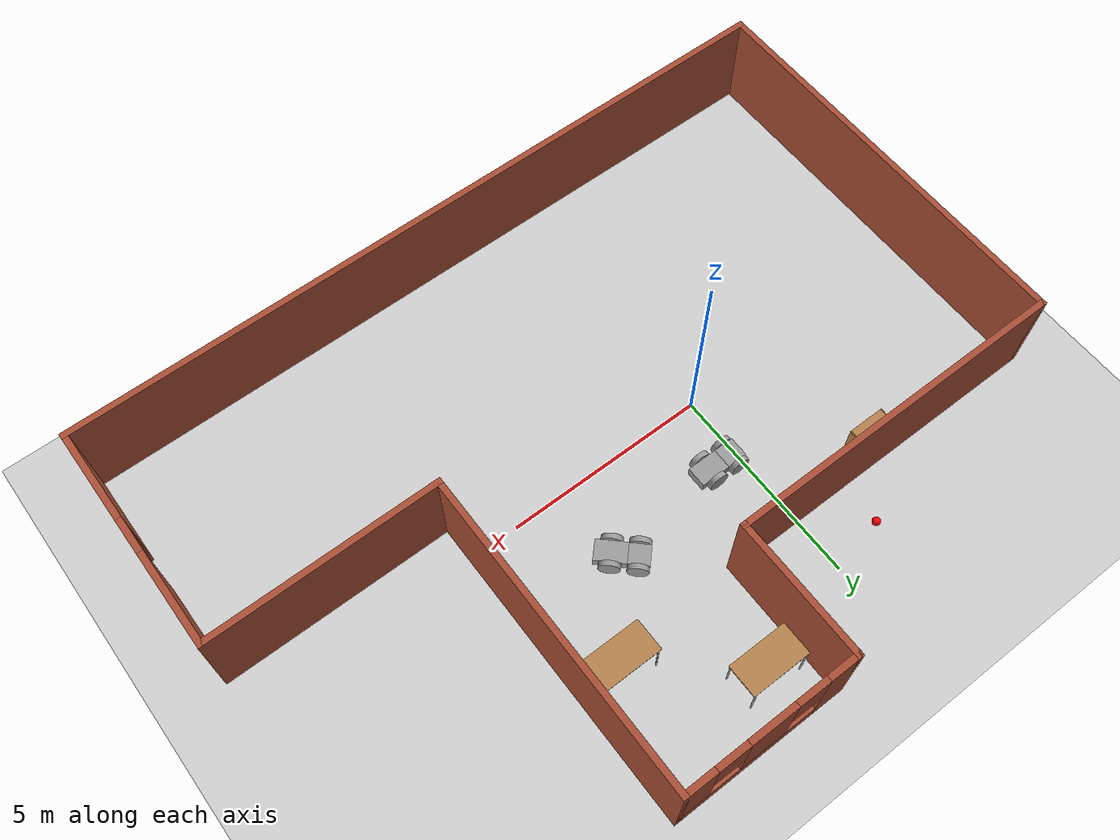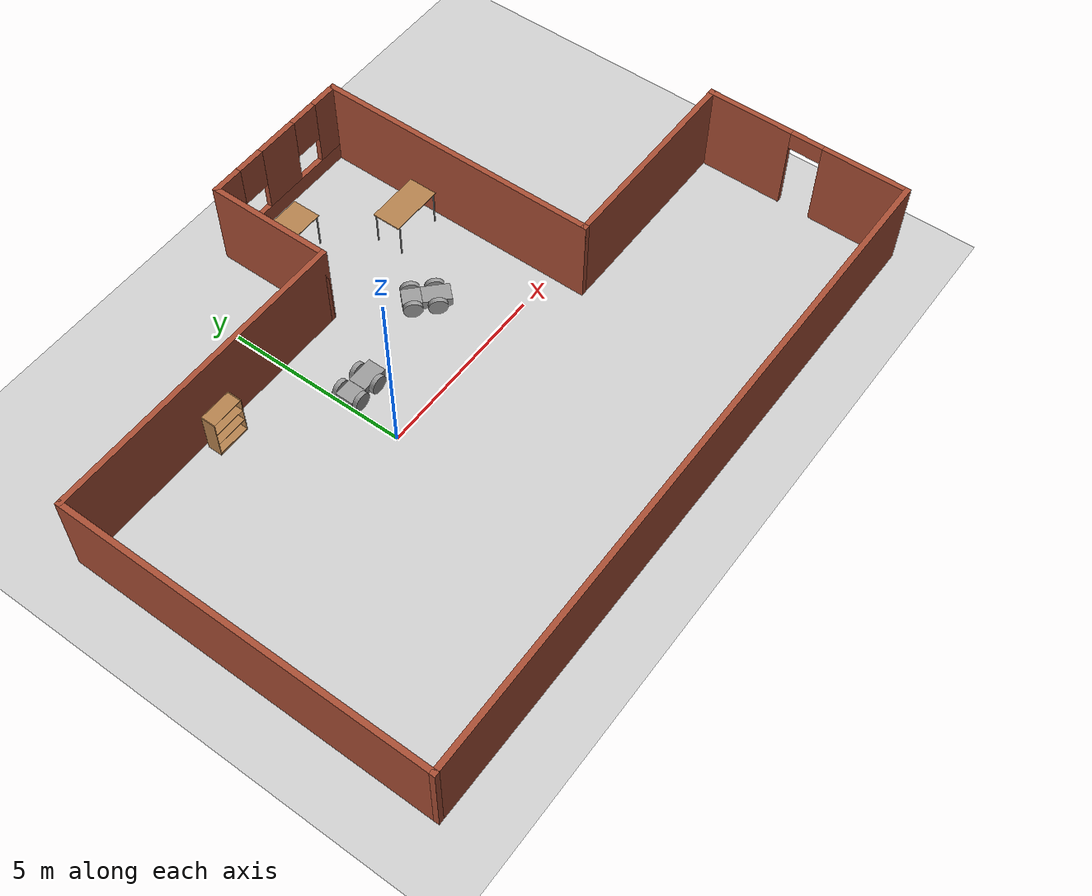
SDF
<sdf version="1.7">
 <world name="default">
  <model name="ground_plane">
   <static>1</static>
   <link name="link">
    <collision name="collision">
     <geometry><plane><normal>0 0 1</normal><size>100 100</size></plane></geometry>
     <surface><friction><ode><mu>100</mu><mu2>50</mu2></ode></friction></surface>
    </collision>
    <visual name="visual">
     <cast_shadows>0</cast_shadows>
     <geometry><plane><normal>0 0 1</normal><size>100 100</size></plane></geometry>
     <material>
      <script><uri>file://media/materials/scripts/gazebo.material</uri><name>Gazebo/Grey</name></script>
     </material>
    </visual>
   </link>
  </model>
  <model name="pj1_building">
   <pose>2.5189 0.1919 0 0 -0 0</pose>
   <link name="Wall_10">
    <pose>9.275 -3.925 0 0 0 -1.5708</pose>
    <visual name="Wall_10_Visual_0">
     <pose>-1.65724 0 1.25 0 -0 0</pose>
     <geometry><box><size>2.43551 0.15 2.5</size></box></geometry>
     <material>
      <script><uri>file://media/materials/scripts/gazebo.material</uri><name>Gazebo/Bricks</name></script>
      <ambient>1 1 1 1</ambient>
     </material>
     <meta><layer>0</layer></meta>
    </visual>
    <collision name="Wall_10_Collision_0">
     <geometry><box><size>2.43551 0.15 2.5</size></box></geometry>
     <pose>-1.65724 0 1.25 0 -0 0</pose>
    </collision>
    <visual name="Wall_10_Visual_1">
     <pose>1.66776 0 1.25 0 -0 0</pose>
     <geometry><box><size>2.41449 0.15 2.5</size></box></geometry>
     <material>
      <script><uri>file://media/materials/scripts/gazebo.material</uri><name>Gazebo/Bricks</name></script>
      <ambient>1 1 1 1</ambient>
     </material>
     <meta><layer>0</layer></meta>
    </visual>
    <collision name="Wall_10_Collision_1">
     <geometry><box><size>2.41449 0.15 2.5</size></box></geometry>
     <pose>1.66776 0 1.25 0 -0 0</pose>
    </collision>
    <visual name="Wall_10_Visual_2">
     <pose>0.010514 0 2.25 0 -0 0</pose>
     <geometry><box><size>0.9 0.15 0.5</size></box></geometry>
     <material>
      <script><uri>file://media/materials/scripts/gazebo.material</uri><name>Gazebo/Bricks</name></script>
      <ambient>1 1 1 1</ambient>
     </material>
     <meta><layer>0</layer></meta>
    </visual>
    <collision name="Wall_10_Collision_2">
     <geometry><box><size>0.9 0.15 0.5</size></box></geometry>
     <pose>0.010514 0 2.25 0 -0 0</pose>
    </collision>
   </link>
   <link name="Wall_11">
    <collision name="Wall_11_Collision">
     <geometry><box><size>18.7 0.15 2.5</size></box></geometry>
     <pose>0 0 1.25 0 -0 0</pose>
    </collision>
    <visual name="Wall_11_Visual">
     <pose>0 0 1.25 0 -0 0</pose>
     <geometry><box><size>18.7 0.15 2.5</size></box></geometry>
     <material>
      <script><uri>file://media/materials/scripts/gazebo.material</uri><name>Gazebo/Bricks</name></script>
      <ambient>1 1 1 1</ambient>
     </material>
     <meta><layer>0</layer></meta>
    </visual>
    <pose>0 -6.725 0 0 -0 3.14159</pose>
   </link>
   <link name="Wall_4">
    <collision name="Wall_4_Collision">
     <geometry><box><size>10.25 0.15 2.5</size></box></geometry>
     <pose>0 0 1.25 0 -0 0</pose>
    </collision>
    <visual name="Wall_4_Visual">
     <pose>0 0 1.25 0 -0 0</pose>
     <geometry><box><size>10.25 0.15 2.5</size></box></geometry>
     <material>
      <script><uri>file://media/materials/scripts/gazebo.material</uri><name>Gazebo/Bricks</name></script>
      <ambient>1 1 1 1</ambient>
     </material>
     <meta><layer>0</layer></meta>
    </visual>
    <pose>-9.275 -1.675 0 0 -0 1.5708</pose>
   </link>
   <link name="Wall_5">
    <collision name="Wall_5_Collision">
     <geometry><box><size>8.75 0.15 2.5</size></box></geometry>
     <pose>0 0 1.25 0 -0 0</pose>
    </collision>
    <visual name="Wall_5_Visual">
     <pose>0 0 1.25 0 -0 0</pose>
     <geometry><box><size>8.75 0.15 2.5</size></box></geometry>
     <material>
      <script><uri>file://media/materials/scripts/gazebo.material</uri><name>Gazebo/Bricks</name></script>
      <ambient>1 1 1 1</ambient>
     </material>
     <meta><layer>0</layer></meta>
    </visual>
    <pose>-4.975 3.375 0 0 -0 0</pose>
   </link>
   <link name="Wall_6">
    <collision name="Wall_6_Collision">
     <geometry><box><size>3.5 0.15 2.5</size></box></geometry>
     <pose>0 0 1.25 0 -0 0</pose>
    </collision>
    <visual name="Wall_6_Visual">
     <pose>0 0 1.25 0 -0 0</pose>
     <geometry><box><size>3.5 0.15 2.5</size></box></geometry>
     <material>
      <script><uri>file://media/materials/scripts/gazebo.material</uri><name>Gazebo/Bricks</name></script>
      <ambient>1 1 1 1</ambient>
     </material>
     <meta><layer>0</layer></meta>
    </visual>
    <pose>-0.675 5.05 0 0 -0 1.5708</pose>
   </link>
   <link name="Wall_7">
    <pose>1.5 6.725 0 0 -0 0</pose>
    <visual name="Wall_7_Visual_0">
     <pose>-1.82606 0 1.25 0 -0 0</pose>
     <geometry><box><size>0.847881 0.15 2.5</size></box></geometry>
     <material>
      <script><uri>file://media/materials/scripts/gazebo.material</uri><name>Gazebo/Bricks</name></script>
      <ambient>1 1 1 1</ambient>
     </material>
     <meta><layer>0</layer></meta>
    </visual>
    <collision name="Wall_7_Collision_0">
     <geometry><box><size>0.847881 0.15 2.5</size></box></geometry>
     <pose>-1.82606 0 1.25 0 -0 0</pose>
    </collision>
    <visual name="Wall_7_Visual_1">
     <pose>0.423941 0 0.25 0 -0 0</pose>
     <geometry><box><size>3.65212 0.15 0.5</size></box></geometry>
     <material>
      <script><uri>file://media/materials/scripts/gazebo.material</uri><name>Gazebo/Bricks</name></script>
      <ambient>1 1 1 1</ambient>
     </material>
     <meta><layer>0</layer></meta>
    </visual>
    <collision name="Wall_7_Collision_1">
     <geometry><box><size>3.65212 0.15 0.5</size></box></geometry>
     <pose>0.423941 0 0.25 0 -0 0</pose>
    </collision>
    <visual name="Wall_7_Visual_2">
     <pose>-0.002694 0 1.5 0 -0 0</pose>
     <geometry><box><size>1.19885 0.15 2</size></box></geometry>
     <material>
      <script><uri>file://media/materials/scripts/gazebo.material</uri><name>Gazebo/Bricks</name></script>
      <ambient>1 1 1 1</ambient>
     </material>
     <meta><layer>0</layer></meta>
    </visual>
    <collision name="Wall_7_Collision_2">
     <geometry><box><size>1.19885 0.15 2</size></box></geometry>
     <pose>-0.002694 0 1.5 0 -0 0</pose>
    </collision>
    <visual name="Wall_7_Visual_3">
     <pose>1.82336 0 1.5 0 -0 0</pose>
     <geometry><box><size>0.853269 0.15 2</size></box></geometry>
     <material>
      <script><uri>file://media/materials/scripts/gazebo.material</uri><name>Gazebo/Bricks</name></script>
      <ambient>1 1 1 1</ambient>
     </material>
     <meta><layer>0</layer></meta>
    </visual>
    <collision name="Wall_7_Collision_3">
     <geometry><box><size>0.853269 0.15 2</size></box></geometry>
     <pose>1.82336 0 1.5 0 -0 0</pose>
    </collision>
    <visual name="Wall_7_Visual_4">
     <pose>-1.00212 0 1.9 0 -0 0</pose>
     <geometry><box><size>0.8 0.15 1.2</size></box></geometry>
     <material>
      <script><uri>file://media/materials/scripts/gazebo.material</uri><name>Gazebo/Bricks</name></script>
      <ambient>1 1 1 1</ambient>
     </material>
     <meta><layer>0</layer></meta>
    </visual>
    <collision name="Wall_7_Collision_4">
     <geometry><box><size>0.8 0.15 1.2</size></box></geometry>
     <pose>-1.00212 0 1.9 0 -0 0</pose>
    </collision>
    <visual name="Wall_7_Visual_5">
     <pose>0.996731 0 1.9 0 -0 0</pose>
     <geometry><box><size>0.8 0.15 1.2</size></box></geometry>
     <material>
      <script><uri>file://media/materials/scripts/gazebo.material</uri><name>Gazebo/Bricks</name></script>
      <ambient>1 1 1 1</ambient>
     </material>
     <meta><layer>0</layer></meta>
    </visual>
    <collision name="Wall_7_Collision_5">
     <geometry><box><size>0.8 0.15 1.2</size></box></geometry>
     <pose>0.996731 0 1.9 0 -0 0</pose>
    </collision>
   </link>
   <link name="Wall_8">
    <collision name="Wall_8_Collision">
     <geometry><box><size>8 0.15 2.5</size></box></geometry>
     <pose>0 0 1.25 0 -0 0</pose>
    </collision>
    <visual name="Wall_8_Visual">
     <pose>0 0 1.25 0 -0 0</pose>
     <geometry><box><size>8 0.15 2.5</size></box></geometry>
     <material>
      <script><uri>file://media/materials/scripts/gazebo.material</uri><name>Gazebo/Bricks</name></script>
      <ambient>1 1 1 1</ambient>
     </material>
     <meta><layer>0</layer></meta>
    </visual>
    <pose>3.675 2.8 0 0 0 -1.5708</pose>
   </link>
   <link name="Wall_9">
    <collision name="Wall_9_Collision">
     <geometry><box><size>5.75 0.15 2.5</size></box></geometry>
     <pose>0 0 1.25 0 -0 0</pose>
    </collision>
    <visual name="Wall_9_Visual">
     <pose>0 0 1.25 0 -0 0</pose>
     <geometry><box><size>5.75 0.15 2.5</size></box></geometry>
     <material>
      <script><uri>file://media/materials/scripts/gazebo.material</uri><name>Gazebo/Bricks</name></script>
      <ambient>1 1 1 1</ambient>
     </material>
     <meta><layer>0</layer></meta>
    </visual>
    <pose>6.475 -1.125 0 0 -0 0</pose>
   </link>
   <static>1</static>
  </model>
  <model name="bookshelf">
   <static>1</static>
   <link name="link">
    <inertial><mass>1</mass></inertial>
    <collision name="back">
     <pose>0 0.005 0.6 0 -0 0</pose>
     <geometry><box><size>0.9 0.01 1.2</size></box></geometry>
    </collision>
    <visual name="visual1">
     <pose>0 0.005 0.6 0 -0 0</pose>
     <geometry><box><size>0.9 0.01 1.2</size></box></geometry>
     <material>
      <script><uri>file://media/materials/scripts/gazebo.material</uri><name>Gazebo/Wood</name></script>
     </material>
    </visual>
    <collision name="left_side">
     <pose>0.45 -0.195 0.6 0 -0 0</pose>
     <geometry><box><size>0.02 0.4 1.2</size></box></geometry>
    </collision>
    <visual name="visual2">
     <pose>0.45 -0.195 0.6 0 -0 0</pose>
     <geometry><box><size>0.02 0.4 1.2</size></box></geometry>
     <material>
      <script><uri>file://media/materials/scripts/gazebo.material</uri><name>Gazebo/Wood</name></script>
     </material>
    </visual>
    <collision name="right_side">
     <pose>-0.45 -0.195 0.6 0 -0 0</pose>
     <geometry><box><size>0.02 0.4 1.2</size></box></geometry>
    </collision>
    <visual name="visual3">
     <pose>-0.45 -0.195 0.6 0 -0 0</pose>
     <geometry><box><size>0.02 0.4 1.2</size></box></geometry>
     <material>
      <script><uri>file://media/materials/scripts/gazebo.material</uri><name>Gazebo/Wood</name></script>
     </material>
    </visual>
    <collision name="bottom">
     <pose>0 -0.195 0.03 0 -0 0</pose>
     <geometry><box><size>0.88 0.4 0.06</size></box></geometry>
    </collision>
    <visual name="visual4">
     <pose>0 -0.195 0.03 0 -0 0</pose>
     <geometry><box><size>0.88 0.4 0.06</size></box></geometry>
     <material>
      <script><uri>file://media/materials/scripts/gazebo.material</uri><name>Gazebo/Wood</name></script>
     </material>
    </visual>
    <collision name="top">
     <pose>0 -0.195 1.19 0 -0 0</pose>
     <geometry><box><size>0.88 0.4 0.02</size></box></geometry>
    </collision>
    <visual name="visual5">
     <pose>0 -0.195 1.19 0 -0 0</pose>
     <geometry><box><size>0.88 0.4 0.02</size></box></geometry>
     <material>
      <script><uri>file://media/materials/scripts/gazebo.material</uri><name>Gazebo/Wood</name></script>
     </material>
    </visual>
    <collision name="low_shelf">
     <pose>0 -0.195 0.43 0 -0 0</pose>
     <geometry><box><size>0.88 0.4 0.02</size></box></geometry>
    </collision>
    <visual name="visual6">
     <pose>0 -0.195 0.43 0 -0 0</pose>
     <geometry><box><size>0.88 0.4 0.02</size></box></geometry>
     <material>
      <script><uri>file://media/materials/scripts/gazebo.material</uri><name>Gazebo/Wood</name></script>
     </material>
    </visual>
    <collision name="high_shelf">
     <pose>0 -0.195 0.8 0 -0 0</pose>
     <geometry><box><size>0.88 0.4 0.02</size></box></geometry>
    </collision>
    <visual name="visual7">
     <pose>0 -0.195 0.8 0 -0 0</pose>
     <geometry><box><size>0.88 0.4 0.02</size></box></geometry>
     <material>
      <script><uri>file://media/materials/scripts/gazebo.material</uri><name>Gazebo/Wood</name></script>
     </material>
    </visual>
   </link>
   <pose>-2.35089 3.40239 0 0 -0 0</pose>
  </model>
  <model name="pj1_robo_1_clone_clone_0">
   <link name="link_0">
    <pose>-0.3125 0 -0.006249 0 -0 0</pose>
    <inertial>
     <mass>1</mass>
     <inertia>
      <ixx>0.166667</ixx>
      <ixy>0</ixy>
      <ixz>0</ixz>
      <iyy>0.166667</iyy>
      <iyz>0</iyz>
      <izz>0.166667</izz>
     </inertia>
    </inertial>
    <visual name="visual">
     <geometry><box><size>0.5 0.5 0.25</size></box></geometry>
     <material>
      <lighting>1</lighting>
      <script><uri>file://media/materials/scripts/gazebo.material</uri><name>Gazebo/Grey</name></script>
      <shader type="pixel"><normal_map>__default__</normal_map></shader>
      <ambient>0.3 0.3 0.3 1</ambient>
      <diffuse>0.7 0.7 0.7 1</diffuse>
      <specular>0.01 0.01 0.01 1</specular>
      <emissive>0 0 0 1</emissive>
     </material>
    </visual>
    <collision name="collision">
     <geometry><box><size>0.5 0.5 0.25</size></box></geometry>
     <surface>
      <friction>
       <ode><mu>1</mu><mu2>1</mu2><fdir1>0 0 0</fdir1><slip1>0</slip1><slip2>0</slip2></ode>
       <torsional>
        <coefficient>1</coefficient>
        <patch_radius>0</patch_radius>
        <surface_radius>0</surface_radius>
        <use_patch_radius>1</use_patch_radius>
        <ode><slip>0</slip></ode>
       </torsional>
      </friction>
      <bounce><restitution_coefficient>0</restitution_coefficient><threshold>1e+06</threshold></bounce>
      <contact>
       <collide_without_contact>0</collide_without_contact>
       <collide_without_contact_bitmask>1</collide_without_contact_bitmask>
       <collide_bitmask>1</collide_bitmask>
       <ode>
        <soft_cfm>0</soft_cfm>
        <soft_erp>0.2</soft_erp>
        <kp>1e+13</kp>
        <kd>1</kd>
        <max_vel>0.01</max_vel>
        <min_depth>0</min_depth>
       </ode>
       <bullet>
        <split_impulse>1</split_impulse>
        <split_impulse_penetration_threshold>-0.01</split_impulse_penetration_threshold>
        <soft_cfm>0</soft_cfm>
        <soft_erp>0.2</soft_erp>
        <kp>1e+13</kp>
        <kd>1</kd>
       </bullet>
      </contact>
     </surface>
    </collision>
   </link>
   <link name="link_0_clone">
    <pose>0.3125 0 0.001251 0 -0 0</pose>
    <inertial>
     <mass>1</mass>
     <inertia>
      <ixx>0.166667</ixx>
      <ixy>0</ixy>
      <ixz>0</ixz>
      <iyy>0.166667</iyy>
      <iyz>0</iyz>
      <izz>0.166667</izz>
     </inertia>
    </inertial>
    <visual name="visual">
     <geometry><box><size>0.75 0.5 0.25</size></box></geometry>
     <material>
      <lighting>1</lighting>
      <script><uri>file://media/materials/scripts/gazebo.material</uri><name>Gazebo/Grey</name></script>
      <shader type="pixel"><normal_map>__default__</normal_map></shader>
      <ambient>0.3 0.3 0.3 1</ambient>
      <diffuse>0.7 0.7 0.7 1</diffuse>
      <specular>0.01 0.01 0.01 1</specular>
      <emissive>0 0 0 1</emissive>
     </material>
    </visual>
    <collision name="collision">
     <geometry><box><size>0.75 0.5 0.25</size></box></geometry>
     <surface>
      <friction>
       <ode><mu>1</mu><mu2>1</mu2><fdir1>0 0 0</fdir1><slip1>0</slip1><slip2>0</slip2></ode>
       <torsional>
        <coefficient>1</coefficient>
        <patch_radius>0</patch_radius>
        <surface_radius>0</surface_radius>
        <use_patch_radius>1</use_patch_radius>
        <ode><slip>0</slip></ode>
       </torsional>
      </friction>
      <bounce><restitution_coefficient>0</restitution_coefficient><threshold>1e+06</threshold></bounce>
      <contact>
       <collide_without_contact>0</collide_without_contact>
       <collide_without_contact_bitmask>1</collide_without_contact_bitmask>
       <collide_bitmask>1</collide_bitmask>
       <ode>
        <soft_cfm>0</soft_cfm>
        <soft_erp>0.2</soft_erp>
        <kp>1e+13</kp>
        <kd>1</kd>
        <max_vel>0.01</max_vel>
        <min_depth>0</min_depth>
       </ode>
       <bullet>
        <split_impulse>1</split_impulse>
        <split_impulse_penetration_threshold>-0.01</split_impulse_penetration_threshold>
        <soft_cfm>0</soft_cfm>
        <soft_erp>0.2</soft_erp>
        <kp>1e+13</kp>
        <kd>1</kd>
       </bullet>
      </contact>
     </surface>
    </collision>
   </link>
   <link name="link_1">
    <pose>-0.3125 -0.312524 0.001247 1.5707 -0 0</pose>
    <inertial>
     <mass>1</mass>
     <inertia><ixx>0.145833</ixx><ixy>0</ixy><ixz>0</ixz><iyy>0.145833</iyy><iyz>0</iyz><izz>0.125</izz></inertia>
    </inertial>
    <visual name="visual">
     <geometry><cylinder><radius>0.25</radius><length>0.125</length></cylinder></geometry>
     <material>
      <lighting>1</lighting>
      <script><uri>file://media/materials/scripts/gazebo.material</uri><name>Gazebo/Grey</name></script>
      <shader type="pixel"><normal_map>__default__</normal_map></shader>
      <ambient>0.3 0.3 0.3 1</ambient>
      <diffuse>0.7 0.7 0.7 1</diffuse>
      <specular>0.01 0.01 0.01 1</specular>
      <emissive>0 0 0 1</emissive>
     </material>
    </visual>
    <collision name="collision">
     <geometry><cylinder><radius>0.25</radius><length>0.125</length></cylinder></geometry>
     <surface>
      <friction>
       <ode><mu>1</mu><mu2>1</mu2><fdir1>0 0 0</fdir1><slip1>0</slip1><slip2>0</slip2></ode>
       <torsional>
        <coefficient>1</coefficient>
        <patch_radius>0</patch_radius>
        <surface_radius>0</surface_radius>
        <use_patch_radius>1</use_patch_radius>
        <ode><slip>0</slip></ode>
       </torsional>
      </friction>
      <bounce><restitution_coefficient>0</restitution_coefficient><threshold>1e+06</threshold></bounce>
      <contact>
       <collide_without_contact>0</collide_without_contact>
       <collide_without_contact_bitmask>1</collide_without_contact_bitmask>
       <collide_bitmask>1</collide_bitmask>
       <ode>
        <soft_cfm>0</soft_cfm>
        <soft_erp>0.2</soft_erp>
        <kp>1e+13</kp>
        <kd>1</kd>
        <max_vel>0.01</max_vel>
        <min_depth>0</min_depth>
       </ode>
       <bullet>
        <split_impulse>1</split_impulse>
        <split_impulse_penetration_threshold>-0.01</split_impulse_penetration_threshold>
        <soft_cfm>0</soft_cfm>
        <soft_erp>0.2</soft_erp>
        <kp>1e+13</kp>
        <kd>1</kd>
       </bullet>
      </contact>
     </surface>
    </collision>
   </link>
   <link name="link_1_clone">
    <pose>-0.3125 0.312524 0.001251 1.5707 -0 0</pose>
    <inertial>
     <mass>1</mass>
     <inertia><ixx>0.145833</ixx><ixy>0</ixy><ixz>0</ixz><iyy>0.145833</iyy><iyz>0</iyz><izz>0.125</izz></inertia>
    </inertial>
    <visual name="visual">
     <geometry><cylinder><radius>0.25</radius><length>0.125</length></cylinder></geometry>
     <material>
      <lighting>1</lighting>
      <script><uri>file://media/materials/scripts/gazebo.material</uri><name>Gazebo/Grey</name></script>
      <shader type="pixel"><normal_map>__default__</normal_map></shader>
      <ambient>0.3 0.3 0.3 1</ambient>
      <diffuse>0.7 0.7 0.7 1</diffuse>
      <specular>0.01 0.01 0.01 1</specular>
      <emissive>0 0 0 1</emissive>
     </material>
    </visual>
    <collision name="collision">
     <geometry><cylinder><radius>0.25</radius><length>0.125</length></cylinder></geometry>
     <surface>
      <friction>
       <ode><mu>1</mu><mu2>1</mu2><fdir1>0 0 0</fdir1><slip1>0</slip1><slip2>0</slip2></ode>
       <torsional>
        <coefficient>1</coefficient>
        <patch_radius>0</patch_radius>
        <surface_radius>0</surface_radius>
        <use_patch_radius>1</use_patch_radius>
        <ode><slip>0</slip></ode>
       </torsional>
      </friction>
      <bounce><restitution_coefficient>0</restitution_coefficient><threshold>1e+06</threshold></bounce>
      <contact>
       <collide_without_contact>0</collide_without_contact>
       <collide_without_contact_bitmask>1</collide_without_contact_bitmask>
       <collide_bitmask>1</collide_bitmask>
       <ode>
        <soft_cfm>0</soft_cfm>
        <soft_erp>0.2</soft_erp>
        <kp>1e+13</kp>
        <kd>1</kd>
        <max_vel>0.01</max_vel>
        <min_depth>0</min_depth>
       </ode>
       <bullet>
        <split_impulse>1</split_impulse>
        <split_impulse_penetration_threshold>-0.01</split_impulse_penetration_threshold>
        <soft_cfm>0</soft_cfm>
        <soft_erp>0.2</soft_erp>
        <kp>1e+13</kp>
        <kd>1</kd>
       </bullet>
      </contact>
     </surface>
    </collision>
   </link>
   <link name="link_1_clone_0">
    <pose>0.3125 -0.312524 0.001251 1.5707 -0 0</pose>
    <inertial>
     <mass>1</mass>
     <inertia><ixx>0.145833</ixx><ixy>0</ixy><ixz>0</ixz><iyy>0.145833</iyy><iyz>0</iyz><izz>0.125</izz></inertia>
    </inertial>
    <visual name="visual">
     <geometry><cylinder><radius>0.25</radius><length>0.125</length></cylinder></geometry>
     <material>
      <lighting>1</lighting>
      <script><uri>file://media/materials/scripts/gazebo.material</uri><name>Gazebo/Grey</name></script>
      <shader type="pixel"><normal_map>__default__</normal_map></shader>
      <ambient>0.3 0.3 0.3 1</ambient>
      <diffuse>0.7 0.7 0.7 1</diffuse>
      <specular>0.01 0.01 0.01 1</specular>
      <emissive>0 0 0 1</emissive>
     </material>
    </visual>
    <collision name="collision">
     <geometry><cylinder><radius>0.25</radius><length>0.125</length></cylinder></geometry>
     <surface>
      <friction>
       <ode><mu>1</mu><mu2>1</mu2><fdir1>0 0 0</fdir1><slip1>0</slip1><slip2>0</slip2></ode>
       <torsional>
        <coefficient>1</coefficient>
        <patch_radius>0</patch_radius>
        <surface_radius>0</surface_radius>
        <use_patch_radius>1</use_patch_radius>
        <ode><slip>0</slip></ode>
       </torsional>
      </friction>
      <bounce><restitution_coefficient>0</restitution_coefficient><threshold>1e+06</threshold></bounce>
      <contact>
       <collide_without_contact>0</collide_without_contact>
       <collide_without_contact_bitmask>1</collide_without_contact_bitmask>
       <collide_bitmask>1</collide_bitmask>
       <ode>
        <soft_cfm>0</soft_cfm>
        <soft_erp>0.2</soft_erp>
        <kp>1e+13</kp>
        <kd>1</kd>
        <max_vel>0.01</max_vel>
        <min_depth>0</min_depth>
       </ode>
       <bullet>
        <split_impulse>1</split_impulse>
        <split_impulse_penetration_threshold>-0.01</split_impulse_penetration_threshold>
        <soft_cfm>0</soft_cfm>
        <soft_erp>0.2</soft_erp>
        <kp>1e+13</kp>
        <kd>1</kd>
       </bullet>
      </contact>
     </surface>
    </collision>
   </link>
   <link name="link_1_clone_1">
    <pose>0.3125 0.312524 0.001251 1.5707 -0 0</pose>
    <inertial>
     <mass>1</mass>
     <inertia><ixx>0.145833</ixx><ixy>0</ixy><ixz>0</ixz><iyy>0.145833</iyy><iyz>0</iyz><izz>0.125</izz></inertia>
    </inertial>
    <visual name="visual">
     <geometry><cylinder><radius>0.25</radius><length>0.125</length></cylinder></geometry>
     <material>
      <lighting>1</lighting>
      <script><uri>file://media/materials/scripts/gazebo.material</uri><name>Gazebo/Grey</name></script>
      <shader type="pixel"><normal_map>__default__</normal_map></shader>
      <ambient>0.3 0.3 0.3 1</ambient>
      <diffuse>0.7 0.7 0.7 1</diffuse>
      <specular>0.01 0.01 0.01 1</specular>
      <emissive>0 0 0 1</emissive>
     </material>
    </visual>
    <collision name="collision">
     <geometry><cylinder><radius>0.25</radius><length>0.125</length></cylinder></geometry>
     <surface>
      <friction>
       <ode><mu>1</mu><mu2>1</mu2><fdir1>0 0 0</fdir1><slip1>0</slip1><slip2>0</slip2></ode>
       <torsional>
        <coefficient>1</coefficient>
        <patch_radius>0</patch_radius>
        <surface_radius>0</surface_radius>
        <use_patch_radius>1</use_patch_radius>
        <ode><slip>0</slip></ode>
       </torsional>
      </friction>
      <bounce><restitution_coefficient>0</restitution_coefficient><threshold>1e+06</threshold></bounce>
      <contact>
       <collide_without_contact>0</collide_without_contact>
       <collide_without_contact_bitmask>1</collide_without_contact_bitmask>
       <collide_bitmask>1</collide_bitmask>
       <ode>
        <soft_cfm>0</soft_cfm>
        <soft_erp>0.2</soft_erp>
        <kp>1e+13</kp>
        <kd>1</kd>
        <max_vel>0.01</max_vel>
        <min_depth>0</min_depth>
       </ode>
       <bullet>
        <split_impulse>1</split_impulse>
        <split_impulse_penetration_threshold>-0.01</split_impulse_penetration_threshold>
        <soft_cfm>0</soft_cfm>
        <soft_erp>0.2</soft_erp>
        <kp>1e+13</kp>
        <kd>1</kd>
       </bullet>
      </contact>
     </surface>
    </collision>
   </link>
   <joint name="link_0_JOINT_1" type="fixed">
    <parent>link_0</parent>
    <child>link_0_clone</child>
    <physics>
     <ode><limit><cfm>0</cfm><erp>0.2</erp></limit><suspension><cfm>0</cfm><erp>0.2</erp></suspension></ode>
    </physics>
   </joint>
   <joint name="link_0_JOINT_2" type="revolute">
    <parent>link_0</parent>
    <child>link_1</child>
    <axis>
     <xyz>1 0 0</xyz>
     <limit>
      <lower>-1.79769e+308</lower>
      <upper>1.79769e+308</upper>
      <effort>-1</effort>
      <velocity>-1</velocity>
     </limit>
     <dynamics>
      <spring_reference>0</spring_reference>
      <spring_stiffness>0</spring_stiffness>
      <damping>0</damping>
     </dynamics>
    </axis>
    <physics>
     <ode><limit><cfm>0</cfm><erp>0.2</erp></limit><suspension><cfm>0</cfm><erp>0.2</erp></suspension></ode>
    </physics>
   </joint>
   <joint name="link_0_JOINT_3" type="revolute">
    <parent>link_0</parent>
    <child>link_1_clone</child>
    <axis>
     <xyz>1 0 0</xyz>
     <limit>
      <lower>-1.79769e+308</lower>
      <upper>1.79769e+308</upper>
      <effort>-1</effort>
      <velocity>-1</velocity>
     </limit>
     <dynamics>
      <spring_reference>0</spring_reference>
      <spring_stiffness>0</spring_stiffness>
      <damping>0</damping>
     </dynamics>
    </axis>
    <physics>
     <ode><limit><cfm>0</cfm><erp>0.2</erp></limit><suspension><cfm>0</cfm><erp>0.2</erp></suspension></ode>
    </physics>
   </joint>
   <joint name="link_0_clone_JOINT_4" type="revolute">
    <parent>link_0_clone</parent>
    <child>link_1_clone_1</child>
    <axis>
     <xyz>1 0 0</xyz>
     <limit>
      <lower>-1.79769e+308</lower>
      <upper>1.79769e+308</upper>
      <effort>-1</effort>
      <velocity>-1</velocity>
     </limit>
     <dynamics>
      <spring_reference>0</spring_reference>
      <spring_stiffness>0</spring_stiffness>
      <damping>0</damping>
     </dynamics>
    </axis>
    <physics>
     <ode><limit><cfm>0</cfm><erp>0.2</erp></limit><suspension><cfm>0</cfm><erp>0.2</erp></suspension></ode>
    </physics>
   </joint>
   <joint name="link_0_clone_JOINT_5" type="revolute">
    <parent>link_0_clone</parent>
    <child>link_1_clone_0</child>
    <axis>
     <xyz>1 0 0</xyz>
     <limit>
      <lower>-1.79769e+308</lower>
      <upper>1.79769e+308</upper>
      <effort>-1</effort>
      <velocity>-1</velocity>
     </limit>
     <dynamics>
      <spring_reference>0</spring_reference>
      <spring_stiffness>0</spring_stiffness>
      <damping>0</damping>
     </dynamics>
    </axis>
    <physics>
     <ode><limit><cfm>0</cfm><erp>0.2</erp></limit><suspension><cfm>0</cfm><erp>0.2</erp></suspension></ode>
    </physics>
   </joint>
   <static>0</static>
   <pose>0.519115 1.56394 0.24875 0 3e-06 0.000794</pose>
  </model>
  <model name="pj1_robo_1_clone_clone_1">
   <link name="link_0">
    <pose>-0.3125 0 -0.006249 0 -0 0</pose>
    <inertial>
     <mass>1</mass>
     <inertia>
      <ixx>0.166667</ixx>
      <ixy>0</ixy>
      <ixz>0</ixz>
      <iyy>0.166667</iyy>
      <iyz>0</iyz>
      <izz>0.166667</izz>
     </inertia>
    </inertial>
    <visual name="visual">
     <geometry><box><size>0.5 0.5 0.25</size></box></geometry>
     <material>
      <lighting>1</lighting>
      <script><uri>file://media/materials/scripts/gazebo.material</uri><name>Gazebo/Grey</name></script>
      <shader type="pixel"><normal_map>__default__</normal_map></shader>
      <ambient>0.3 0.3 0.3 1</ambient>
      <diffuse>0.7 0.7 0.7 1</diffuse>
      <specular>0.01 0.01 0.01 1</specular>
      <emissive>0 0 0 1</emissive>
     </material>
    </visual>
    <collision name="collision">
     <geometry><box><size>0.5 0.5 0.25</size></box></geometry>
     <surface>
      <friction>
       <ode><mu>1</mu><mu2>1</mu2><fdir1>0 0 0</fdir1><slip1>0</slip1><slip2>0</slip2></ode>
       <torsional>
        <coefficient>1</coefficient>
        <patch_radius>0</patch_radius>
        <surface_radius>0</surface_radius>
        <use_patch_radius>1</use_patch_radius>
        <ode><slip>0</slip></ode>
       </torsional>
      </friction>
      <bounce><restitution_coefficient>0</restitution_coefficient><threshold>1e+06</threshold></bounce>
      <contact>
       <collide_without_contact>0</collide_without_contact>
       <collide_without_contact_bitmask>1</collide_without_contact_bitmask>
       <collide_bitmask>1</collide_bitmask>
       <ode>
        <soft_cfm>0</soft_cfm>
        <soft_erp>0.2</soft_erp>
        <kp>1e+13</kp>
        <kd>1</kd>
        <max_vel>0.01</max_vel>
        <min_depth>0</min_depth>
       </ode>
       <bullet>
        <split_impulse>1</split_impulse>
        <split_impulse_penetration_threshold>-0.01</split_impulse_penetration_threshold>
        <soft_cfm>0</soft_cfm>
        <soft_erp>0.2</soft_erp>
        <kp>1e+13</kp>
        <kd>1</kd>
       </bullet>
      </contact>
     </surface>
    </collision>
   </link>
   <link name="link_0_clone">
    <pose>0.3125 0 0.001251 0 -0 0</pose>
    <inertial>
     <mass>1</mass>
     <inertia>
      <ixx>0.166667</ixx>
      <ixy>0</ixy>
      <ixz>0</ixz>
      <iyy>0.166667</iyy>
      <iyz>0</iyz>
      <izz>0.166667</izz>
     </inertia>
    </inertial>
    <visual name="visual">
     <geometry><box><size>0.75 0.5 0.25</size></box></geometry>
     <material>
      <lighting>1</lighting>
      <script><uri>file://media/materials/scripts/gazebo.material</uri><name>Gazebo/Grey</name></script>
      <shader type="pixel"><normal_map>__default__</normal_map></shader>
      <ambient>0.3 0.3 0.3 1</ambient>
      <diffuse>0.7 0.7 0.7 1</diffuse>
      <specular>0.01 0.01 0.01 1</specular>
      <emissive>0 0 0 1</emissive>
     </material>
    </visual>
    <collision name="collision">
     <geometry><box><size>0.75 0.5 0.25</size></box></geometry>
     <surface>
      <friction>
       <ode><mu>1</mu><mu2>1</mu2><fdir1>0 0 0</fdir1><slip1>0</slip1><slip2>0</slip2></ode>
       <torsional>
        <coefficient>1</coefficient>
        <patch_radius>0</patch_radius>
        <surface_radius>0</surface_radius>
        <use_patch_radius>1</use_patch_radius>
        <ode><slip>0</slip></ode>
       </torsional>
      </friction>
      <bounce><restitution_coefficient>0</restitution_coefficient><threshold>1e+06</threshold></bounce>
      <contact>
       <collide_without_contact>0</collide_without_contact>
       <collide_without_contact_bitmask>1</collide_without_contact_bitmask>
       <collide_bitmask>1</collide_bitmask>
       <ode>
        <soft_cfm>0</soft_cfm>
        <soft_erp>0.2</soft_erp>
        <kp>1e+13</kp>
        <kd>1</kd>
        <max_vel>0.01</max_vel>
        <min_depth>0</min_depth>
       </ode>
       <bullet>
        <split_impulse>1</split_impulse>
        <split_impulse_penetration_threshold>-0.01</split_impulse_penetration_threshold>
        <soft_cfm>0</soft_cfm>
        <soft_erp>0.2</soft_erp>
        <kp>1e+13</kp>
        <kd>1</kd>
       </bullet>
      </contact>
     </surface>
    </collision>
   </link>
   <link name="link_1">
    <pose>-0.3125 -0.312524 0.001247 1.5707 -0 0</pose>
    <inertial>
     <mass>1</mass>
     <inertia><ixx>0.145833</ixx><ixy>0</ixy><ixz>0</ixz><iyy>0.145833</iyy><iyz>0</iyz><izz>0.125</izz></inertia>
    </inertial>
    <visual name="visual">
     <geometry><cylinder><radius>0.25</radius><length>0.125</length></cylinder></geometry>
     <material>
      <lighting>1</lighting>
      <script><uri>file://media/materials/scripts/gazebo.material</uri><name>Gazebo/Grey</name></script>
      <shader type="pixel"><normal_map>__default__</normal_map></shader>
      <ambient>0.3 0.3 0.3 1</ambient>
      <diffuse>0.7 0.7 0.7 1</diffuse>
      <specular>0.01 0.01 0.01 1</specular>
      <emissive>0 0 0 1</emissive>
     </material>
    </visual>
    <collision name="collision">
     <geometry><cylinder><radius>0.25</radius><length>0.125</length></cylinder></geometry>
     <surface>
      <friction>
       <ode><mu>1</mu><mu2>1</mu2><fdir1>0 0 0</fdir1><slip1>0</slip1><slip2>0</slip2></ode>
       <torsional>
        <coefficient>1</coefficient>
        <patch_radius>0</patch_radius>
        <surface_radius>0</surface_radius>
        <use_patch_radius>1</use_patch_radius>
        <ode><slip>0</slip></ode>
       </torsional>
      </friction>
      <bounce><restitution_coefficient>0</restitution_coefficient><threshold>1e+06</threshold></bounce>
      <contact>
       <collide_without_contact>0</collide_without_contact>
       <collide_without_contact_bitmask>1</collide_without_contact_bitmask>
       <collide_bitmask>1</collide_bitmask>
       <ode>
        <soft_cfm>0</soft_cfm>
        <soft_erp>0.2</soft_erp>
        <kp>1e+13</kp>
        <kd>1</kd>
        <max_vel>0.01</max_vel>
        <min_depth>0</min_depth>
       </ode>
       <bullet>
        <split_impulse>1</split_impulse>
        <split_impulse_penetration_threshold>-0.01</split_impulse_penetration_threshold>
        <soft_cfm>0</soft_cfm>
        <soft_erp>0.2</soft_erp>
        <kp>1e+13</kp>
        <kd>1</kd>
       </bullet>
      </contact>
     </surface>
    </collision>
   </link>
   <link name="link_1_clone">
    <pose>-0.3125 0.312524 0.001251 1.5707 -0 0</pose>
    <inertial>
     <mass>1</mass>
     <inertia><ixx>0.145833</ixx><ixy>0</ixy><ixz>0</ixz><iyy>0.145833</iyy><iyz>0</iyz><izz>0.125</izz></inertia>
    </inertial>
    <visual name="visual">
     <geometry><cylinder><radius>0.25</radius><length>0.125</length></cylinder></geometry>
     <material>
      <lighting>1</lighting>
      <script><uri>file://media/materials/scripts/gazebo.material</uri><name>Gazebo/Grey</name></script>
      <shader type="pixel"><normal_map>__default__</normal_map></shader>
      <ambient>0.3 0.3 0.3 1</ambient>
      <diffuse>0.7 0.7 0.7 1</diffuse>
      <specular>0.01 0.01 0.01 1</specular>
      <emissive>0 0 0 1</emissive>
     </material>
    </visual>
    <collision name="collision">
     <geometry><cylinder><radius>0.25</radius><length>0.125</length></cylinder></geometry>
     <surface>
      <friction>
       <ode><mu>1</mu><mu2>1</mu2><fdir1>0 0 0</fdir1><slip1>0</slip1><slip2>0</slip2></ode>
       <torsional>
        <coefficient>1</coefficient>
        <patch_radius>0</patch_radius>
        <surface_radius>0</surface_radius>
        <use_patch_radius>1</use_patch_radius>
        <ode><slip>0</slip></ode>
       </torsional>
      </friction>
      <bounce><restitution_coefficient>0</restitution_coefficient><threshold>1e+06</threshold></bounce>
      <contact>
       <collide_without_contact>0</collide_without_contact>
       <collide_without_contact_bitmask>1</collide_without_contact_bitmask>
       <collide_bitmask>1</collide_bitmask>
       <ode>
        <soft_cfm>0</soft_cfm>
        <soft_erp>0.2</soft_erp>
        <kp>1e+13</kp>
        <kd>1</kd>
        <max_vel>0.01</max_vel>
        <min_depth>0</min_depth>
       </ode>
       <bullet>
        <split_impulse>1</split_impulse>
        <split_impulse_penetration_threshold>-0.01</split_impulse_penetration_threshold>
        <soft_cfm>0</soft_cfm>
        <soft_erp>0.2</soft_erp>
        <kp>1e+13</kp>
        <kd>1</kd>
       </bullet>
      </contact>
     </surface>
    </collision>
   </link>
   <link name="link_1_clone_0">
    <pose>0.3125 -0.312524 0.001251 1.5707 -0 0</pose>
    <inertial>
     <mass>1</mass>
     <inertia><ixx>0.145833</ixx><ixy>0</ixy><ixz>0</ixz><iyy>0.145833</iyy><iyz>0</iyz><izz>0.125</izz></inertia>
    </inertial>
    <visual name="visual">
     <geometry><cylinder><radius>0.25</radius><length>0.125</length></cylinder></geometry>
     <material>
      <lighting>1</lighting>
      <script><uri>file://media/materials/scripts/gazebo.material</uri><name>Gazebo/Grey</name></script>
      <shader type="pixel"><normal_map>__default__</normal_map></shader>
      <ambient>0.3 0.3 0.3 1</ambient>
      <diffuse>0.7 0.7 0.7 1</diffuse>
      <specular>0.01 0.01 0.01 1</specular>
      <emissive>0 0 0 1</emissive>
     </material>
    </visual>
    <collision name="collision">
     <geometry><cylinder><radius>0.25</radius><length>0.125</length></cylinder></geometry>
     <surface>
      <friction>
       <ode><mu>1</mu><mu2>1</mu2><fdir1>0 0 0</fdir1><slip1>0</slip1><slip2>0</slip2></ode>
       <torsional>
        <coefficient>1</coefficient>
        <patch_radius>0</patch_radius>
        <surface_radius>0</surface_radius>
        <use_patch_radius>1</use_patch_radius>
        <ode><slip>0</slip></ode>
       </torsional>
      </friction>
      <bounce><restitution_coefficient>0</restitution_coefficient><threshold>1e+06</threshold></bounce>
      <contact>
       <collide_without_contact>0</collide_without_contact>
       <collide_without_contact_bitmask>1</collide_without_contact_bitmask>
       <collide_bitmask>1</collide_bitmask>
       <ode>
        <soft_cfm>0</soft_cfm>
        <soft_erp>0.2</soft_erp>
        <kp>1e+13</kp>
        <kd>1</kd>
        <max_vel>0.01</max_vel>
        <min_depth>0</min_depth>
       </ode>
       <bullet>
        <split_impulse>1</split_impulse>
        <split_impulse_penetration_threshold>-0.01</split_impulse_penetration_threshold>
        <soft_cfm>0</soft_cfm>
        <soft_erp>0.2</soft_erp>
        <kp>1e+13</kp>
        <kd>1</kd>
       </bullet>
      </contact>
     </surface>
    </collision>
   </link>
   <link name="link_1_clone_1">
    <pose>0.3125 0.312524 0.001251 1.5707 -0 0</pose>
    <inertial>
     <mass>1</mass>
     <inertia><ixx>0.145833</ixx><ixy>0</ixy><ixz>0</ixz><iyy>0.145833</iyy><iyz>0</iyz><izz>0.125</izz></inertia>
    </inertial>
    <visual name="visual">
     <geometry><cylinder><radius>0.25</radius><length>0.125</length></cylinder></geometry>
     <material>
      <lighting>1</lighting>
      <script><uri>file://media/materials/scripts/gazebo.material</uri><name>Gazebo/Grey</name></script>
      <shader type="pixel"><normal_map>__default__</normal_map></shader>
      <ambient>0.3 0.3 0.3 1</ambient>
      <diffuse>0.7 0.7 0.7 1</diffuse>
      <specular>0.01 0.01 0.01 1</specular>
      <emissive>0 0 0 1</emissive>
     </material>
    </visual>
    <collision name="collision">
     <geometry><cylinder><radius>0.25</radius><length>0.125</length></cylinder></geometry>
     <surface>
      <friction>
       <ode><mu>1</mu><mu2>1</mu2><fdir1>0 0 0</fdir1><slip1>0</slip1><slip2>0</slip2></ode>
       <torsional>
        <coefficient>1</coefficient>
        <patch_radius>0</patch_radius>
        <surface_radius>0</surface_radius>
        <use_patch_radius>1</use_patch_radius>
        <ode><slip>0</slip></ode>
       </torsional>
      </friction>
      <bounce><restitution_coefficient>0</restitution_coefficient><threshold>1e+06</threshold></bounce>
      <contact>
       <collide_without_contact>0</collide_without_contact>
       <collide_without_contact_bitmask>1</collide_without_contact_bitmask>
       <collide_bitmask>1</collide_bitmask>
       <ode>
        <soft_cfm>0</soft_cfm>
        <soft_erp>0.2</soft_erp>
        <kp>1e+13</kp>
        <kd>1</kd>
        <max_vel>0.01</max_vel>
        <min_depth>0</min_depth>
       </ode>
       <bullet>
        <split_impulse>1</split_impulse>
        <split_impulse_penetration_threshold>-0.01</split_impulse_penetration_threshold>
        <soft_cfm>0</soft_cfm>
        <soft_erp>0.2</soft_erp>
        <kp>1e+13</kp>
        <kd>1</kd>
       </bullet>
      </contact>
     </surface>
    </collision>
   </link>
   <joint name="link_0_JOINT_1" type="fixed">
    <parent>link_0</parent>
    <child>link_0_clone</child>
    <physics>
     <ode><limit><cfm>0</cfm><erp>0.2</erp></limit><suspension><cfm>0</cfm><erp>0.2</erp></suspension></ode>
    </physics>
   </joint>
   <joint name="link_0_JOINT_2" type="revolute">
    <parent>link_0</parent>
    <child>link_1</child>
    <axis>
     <xyz>1 0 0</xyz>
     <limit>
      <lower>-1.79769e+308</lower>
      <upper>1.79769e+308</upper>
      <effort>-1</effort>
      <velocity>-1</velocity>
     </limit>
     <dynamics>
      <spring_reference>0</spring_reference>
      <spring_stiffness>0</spring_stiffness>
      <damping>0</damping>
     </dynamics>
    </axis>
    <physics>
     <ode><limit><cfm>0</cfm><erp>0.2</erp></limit><suspension><cfm>0</cfm><erp>0.2</erp></suspension></ode>
    </physics>
   </joint>
   <joint name="link_0_JOINT_3" type="revolute">
    <parent>link_0</parent>
    <child>link_1_clone</child>
    <axis>
     <xyz>1 0 0</xyz>
     <limit>
      <lower>-1.79769e+308</lower>
      <upper>1.79769e+308</upper>
      <effort>-1</effort>
      <velocity>-1</velocity>
     </limit>
     <dynamics>
      <spring_reference>0</spring_reference>
      <spring_stiffness>0</spring_stiffness>
      <damping>0</damping>
     </dynamics>
    </axis>
    <physics>
     <ode><limit><cfm>0</cfm><erp>0.2</erp></limit><suspension><cfm>0</cfm><erp>0.2</erp></suspension></ode>
    </physics>
   </joint>
   <joint name="link_0_clone_JOINT_4" type="revolute">
    <parent>link_0_clone</parent>
    <child>link_1_clone_1</child>
    <axis>
     <xyz>1 0 0</xyz>
     <limit>
      <lower>-1.79769e+308</lower>
      <upper>1.79769e+308</upper>
      <effort>-1</effort>
      <velocity>-1</velocity>
     </limit>
     <dynamics>
      <spring_reference>0</spring_reference>
      <spring_stiffness>0</spring_stiffness>
      <damping>0</damping>
     </dynamics>
    </axis>
    <physics>
     <ode><limit><cfm>0</cfm><erp>0.2</erp></limit><suspension><cfm>0</cfm><erp>0.2</erp></suspension></ode>
    </physics>
   </joint>
   <joint name="link_0_clone_JOINT_5" type="revolute">
    <parent>link_0_clone</parent>
    <child>link_1_clone_0</child>
    <axis>
     <xyz>1 0 0</xyz>
     <limit>
      <lower>-1.79769e+308</lower>
      <upper>1.79769e+308</upper>
      <effort>-1</effort>
      <velocity>-1</velocity>
     </limit>
     <dynamics>
      <spring_reference>0</spring_reference>
      <spring_stiffness>0</spring_stiffness>
      <damping>0</damping>
     </dynamics>
    </axis>
    <physics>
     <ode><limit><cfm>0</cfm><erp>0.2</erp></limit><suspension><cfm>0</cfm><erp>0.2</erp></suspension></ode>
    </physics>
   </joint>
   <static>0</static>
   <pose>3.55728 1.99664 0.24875 0 3e-06 -0.76509</pose>
  </model>
  <model name="table">
   <static>1</static>
   <link name="link">
    <collision name="surface">
     <pose>0 0 1 0 -0 0</pose>
     <geometry><box><size>1.5 0.8 0.03</size></box></geometry>
     <surface><friction><ode><mu>0.6</mu><mu2>0.6</mu2></ode></friction></surface>
    </collision>
    <visual name="visual1">
     <pose>0 0 1 0 -0 0</pose>
     <geometry><box><size>1.5 0.8 0.03</size></box></geometry>
     <material>
      <script><uri>file://media/materials/scripts/gazebo.material</uri><name>Gazebo/Wood</name></script>
     </material>
    </visual>
    <collision name="front_left_leg">
     <pose>0.68 0.38 0.5 0 -0 0</pose>
     <geometry><cylinder><radius>0.02</radius><length>1</length></cylinder></geometry>
    </collision>
    <visual name="front_left_leg">
     <pose>0.68 0.38 0.5 0 -0 0</pose>
     <geometry><cylinder><radius>0.02</radius><length>1</length></cylinder></geometry>
     <material>
      <script><uri>file://media/materials/scripts/gazebo.material</uri><name>Gazebo/Grey</name></script>
     </material>
    </visual>
    <collision name="front_right_leg">
     <pose>0.68 -0.38 0.5 0 -0 0</pose>
     <geometry><cylinder><radius>0.02</radius><length>1</length></cylinder></geometry>
    </collision>
    <visual name="front_right_leg">
     <pose>0.68 -0.38 0.5 0 -0 0</pose>
     <geometry><cylinder><radius>0.02</radius><length>1</length></cylinder></geometry>
     <material>
      <script><uri>file://media/materials/scripts/gazebo.material</uri><name>Gazebo/Grey</name></script>
     </material>
    </visual>
    <collision name="back_right_leg">
     <pose>-0.68 -0.38 0.5 0 -0 0</pose>
     <geometry><cylinder><radius>0.02</radius><length>1</length></cylinder></geometry>
    </collision>
    <visual name="back_right_leg">
     <pose>-0.68 -0.38 0.5 0 -0 0</pose>
     <geometry><cylinder><radius>0.02</radius><length>1</length></cylinder></geometry>
     <material>
      <script><uri>file://media/materials/scripts/gazebo.material</uri><name>Gazebo/Grey</name></script>
     </material>
    </visual>
    <collision name="back_left_leg">
     <pose>-0.68 0.38 0.5 0 -0 0</pose>
     <geometry><cylinder><radius>0.02</radius><length>1</length></cylinder></geometry>
    </collision>
    <visual name="back_left_leg">
     <pose>-0.68 0.38 0.5 0 -0 0</pose>
     <geometry><cylinder><radius>0.02</radius><length>1</length></cylinder></geometry>
     <material>
      <script><uri>file://media/materials/scripts/gazebo.material</uri><name>Gazebo/Grey</name></script>
     </material>
    </visual>
   </link>
   <pose>5.17823 3.85378 0 0 -0 0</pose>
  </model>
  <model name="table_0">
   <static>1</static>
   <link name="link">
    <collision name="surface">
     <pose>0 0 1 0 -0 0</pose>
     <geometry><box><size>1.5 0.8 0.03</size></box></geometry>
     <surface><friction><ode><mu>0.6</mu><mu2>0.6</mu2></ode></friction></surface>
    </collision>
    <visual name="visual1">
     <pose>0 0 1 0 -0 0</pose>
     <geometry><box><size>1.5 0.8 0.03</size></box></geometry>
     <material>
      <script><uri>file://media/materials/scripts/gazebo.material</uri><name>Gazebo/Wood</name></script>
     </material>
    </visual>
    <collision name="front_left_leg">
     <pose>0.68 0.38 0.5 0 -0 0</pose>
     <geometry><cylinder><radius>0.02</radius><length>1</length></cylinder></geometry>
    </collision>
    <visual name="front_left_leg">
     <pose>0.68 0.38 0.5 0 -0 0</pose>
     <geometry><cylinder><radius>0.02</radius><length>1</length></cylinder></geometry>
     <material>
      <script><uri>file://media/materials/scripts/gazebo.material</uri><name>Gazebo/Grey</name></script>
     </material>
    </visual>
    <collision name="front_right_leg">
     <pose>0.68 -0.38 0.5 0 -0 0</pose>
     <geometry><cylinder><radius>0.02</radius><length>1</length></cylinder></geometry>
    </collision>
    <visual name="front_right_leg">
     <pose>0.68 -0.38 0.5 0 -0 0</pose>
     <geometry><cylinder><radius>0.02</radius><length>1</length></cylinder></geometry>
     <material>
      <script><uri>file://media/materials/scripts/gazebo.material</uri><name>Gazebo/Grey</name></script>
     </material>
    </visual>
    <collision name="back_right_leg">
     <pose>-0.68 -0.38 0.5 0 -0 0</pose>
     <geometry><cylinder><radius>0.02</radius><length>1</length></cylinder></geometry>
    </collision>
    <visual name="back_right_leg">
     <pose>-0.68 -0.38 0.5 0 -0 0</pose>
     <geometry><cylinder><radius>0.02</radius><length>1</length></cylinder></geometry>
     <material>
      <script><uri>file://media/materials/scripts/gazebo.material</uri><name>Gazebo/Grey</name></script>
     </material>
    </visual>
    <collision name="back_left_leg">
     <pose>-0.68 0.38 0.5 0 -0 0</pose>
     <geometry><cylinder><radius>0.02</radius><length>1</length></cylinder></geometry>
    </collision>
    <visual name="back_left_leg">
     <pose>-0.68 0.38 0.5 0 -0 0</pose>
     <geometry><cylinder><radius>0.02</radius><length>1</length></cylinder></geometry>
     <material>
      <script><uri>file://media/materials/scripts/gazebo.material</uri><name>Gazebo/Grey</name></script>
     </material>
    </visual>
   </link>
   <pose>2.83555 5.73932 0 0 -0 0</pose>
  </model>
  <model name="red_ball">
   <link name="link">
    <inertial>
     <mass>1</mass>
     <inertia><ixx>0.1</ixx><ixy>0</ixy><ixz>0</ixz><iyy>0.1</iyy><iyz>0</iyz><izz>0.1</izz></inertia>
    </inertial>
    <visual name="visual">
     <geometry><sphere><radius>0.1</radius></sphere></geometry>
     <material>
      <script><name>Gazebo/Grey</name><uri>file://media/materials/scripts/gazebo.material</uri></script>
      <shader type="pixel"><normal_map>__default__</normal_map></shader>
      <ambient>1 0 0 1</ambient>
      <diffuse>1 0 0 1</diffuse>
      <specular>1 0 0 1</specular>
      <emissive>0 0 0 1</emissive>
     </material>
    </visual>
    <collision name="collision">
     <geometry><sphere><radius>0.1</radius></sphere></geometry>
     <surface>
      <friction>
       <ode><mu>1</mu><mu2>1</mu2><fdir1>0 0 0</fdir1><slip1>0</slip1><slip2>0</slip2></ode>
       <torsional>
        <coefficient>1</coefficient>
        <patch_radius>0</patch_radius>
        <surface_radius>0</surface_radius>
        <use_patch_radius>1</use_patch_radius>
        <ode><slip>0</slip></ode>
       </torsional>
      </friction>
      <bounce><restitution_coefficient>0</restitution_coefficient><threshold>1e+06</threshold></bounce>
      <contact>
       <collide_without_contact>0</collide_without_contact>
       <collide_without_contact_bitmask>1</collide_without_contact_bitmask>
       <collide_bitmask>1</collide_bitmask>
       <ode>
        <soft_cfm>0</soft_cfm>
        <soft_erp>0.2</soft_erp>
        <kp>1e+13</kp>
        <kd>1</kd>
        <max_vel>0.01</max_vel>
        <min_depth>0</min_depth>
       </ode>
       <bullet>
        <split_impulse>1</split_impulse>
        <split_impulse_penetration_threshold>-0.01</split_impulse_penetration_threshold>
        <soft_cfm>0</soft_cfm>
        <soft_erp>0.2</soft_erp>
        <kp>1e+13</kp>
        <kd>1</kd>
       </bullet>
      </contact>
     </surface>
    </collision>
   </link>
   <static>0</static>
   <pose>-1.18769 4.76913 0.5 0 -0 0</pose>
  </model>
 </world>
</sdf>
